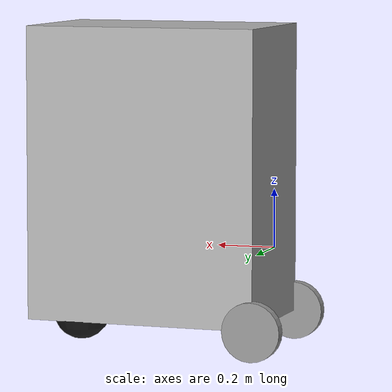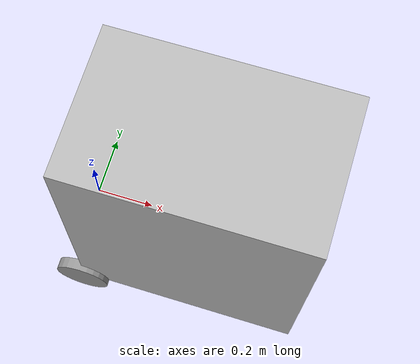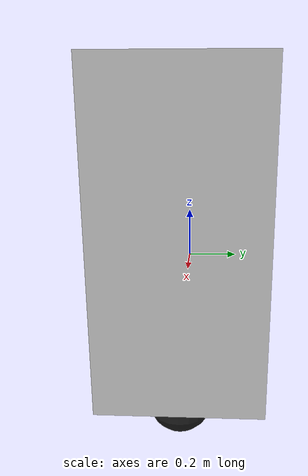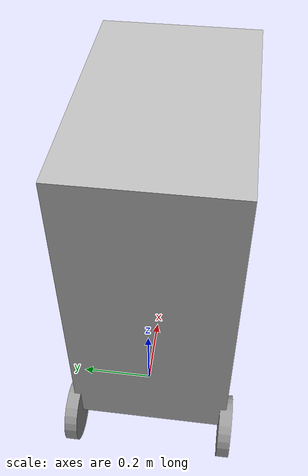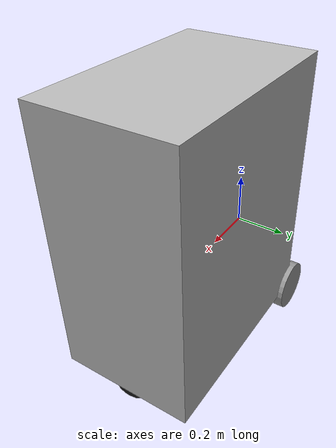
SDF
<sdf version='1.7'>
  <model name='goal_marker'>
    <link name='base_link'>
      <inertial>
        <pose>0.4 0 0.25 0 -0 0</pose> <!-- Kept the same as previous -->
        <mass>0.5</mass>
        <inertia>
          <ixx>0.0508333</ixx> <!-- Kept the same -->
          <ixy>0</ixy>
          <ixz>0.015</ixz>
          <iyy>0.0758333</iyy>
          <iyz>0</iyz>
          <izz>0.0353167</izz>
        </inertia>
      </inertial>
      <collision name='base_link_fixed_joint_lump__chassis_collision'>
        <pose>0.4 0 0.25 0 -0 0</pose> <!-- Kept the same -->
        <geometry>
          <box>
            <size>0.8 0.5 1.0</size> <!-- Dimensions unchanged -->
          </box>
        </geometry>
        <surface>
          <contact>
            <ode/>
          </contact>
          <friction>
            <ode/>
          </friction>
        </surface>
      </collision>
      <collision name='base_link_fixed_joint_lump__front_caster_collision_1'>
        <pose>0.7 0 -0.25 0 -0 0</pose> <!-- Moved caster more front (from 0.64 to 0.75) -->
        <geometry>
          <sphere>
            <radius>0.1</radius> <!-- Increased radius from 0.05 to 0.1 to match wheel radius and fill offset -->
          </sphere>
        </geometry>
        <surface>
          <contact>
            <ode>

            </ode>
          </contact>
          <friction>
            <ode>
              <mu>0</mu>             <!-- primary friction (forward/backward) -->
              <mu2>0</mu2>            <!-- secondary friction (lateral) – VERY important for caster! -->
            </ode>
          </friction>
        </surface>
      </collision>
      <visual name="base_link_fixed_joint_lump__chassis_visual_visual">
        <pose>0.4 0 0.25 0 -0 0</pose>
        <geometry>
          <box>
            <size>0.8 0.5 1.0</size>
          </box>
        </geometry>
        <material>
          <script>
            <uri>model://goal_marker/materials/scripts/chassis_pattern.material</uri>
            <name>goal_marker/ChassisPattern</name>
          </script>
        </material>
      </visual>
      <visual name='base_link_fixed_joint_lump__front_caster_visual_1'>
        <pose>0.7 0 -0.25 0 -0 0</pose> <!-- Moved caster more front (from 0.64 to 0.75) -->
        <geometry>
          <sphere>
            <radius>0.1</radius> <!-- Increased radius from 0.05 to 0.1 to match wheel radius and fill offset -->
          </sphere>
        </geometry>
        <material>
          <script>
            <name>Gazebo/Black</name>
            <uri>file://media/materials/scripts/gazebo.material</uri>
          </script>
        </material>
      </visual>
    </link>
    <joint name='left_wheel_joint' type='revolute'>
      <pose relative_to='base_link'>0 0.25 -0.25 -1.5708 0 0</pose> <!-- Adjusted y from 0.225 to 0.25 to stick to the outer side (width 0.5m, outer edge at 0.25m) -->
      <parent>base_link</parent>
      <child>left_wheel</child>
      <axis>
        <xyz>0 0 1</xyz>
        <limit>
          <lower>-1e+16</lower>
          <upper>1e+16</upper>
        </limit>
        <dynamics>
          <spring_reference>0</spring_reference>
          <spring_stiffness>0</spring_stiffness>
        </dynamics>
      </axis>
    </joint>
    <link name='left_wheel'>
      <pose relative_to='left_wheel_joint'>0 0 0 0 -0 0</pose>
      <inertial>
        <pose>0 0 0 0 -0 0</pose>
        <mass>0.1</mass>
        <inertia>
          <ixx>0.0003</ixx>
          <ixy>0</ixy>
          <ixz>0</ixz>
          <iyy>0.0003</iyy>
          <iyz>0</iyz>
          <izz>0.0005</izz>
        </inertia>
      </inertial>
      <collision name='left_wheel_collision'>
        <pose>0 0 0 0 -0 0</pose>
        <geometry>
          <cylinder>
            <length>0.04</length>
            <radius>0.1</radius> <!-- Radius unchanged as per instructions -->
          </cylinder>
        </geometry>
        <surface>
          <contact>
            <ode/>
          </contact>
          <friction>
            <ode/>
          </friction>
        </surface>
      </collision>
      <visual name='left_wheel_visual'>
        <pose>0 0 0 0 -0 0</pose>
        <geometry>
          <cylinder>
            <length>0.04</length>
            <radius>0.1</radius> <!-- Radius unchanged as per instructions -->
          </cylinder>
        </geometry>
        <material>
          <script>
            <name>Gazebo/Grey</name>
            <uri>file://media/materials/scripts/gazebo.material</uri>
          </script>
        </material>
      </visual>
    </link>
    <joint name='right_wheel_joint' type='revolute'>
      <pose relative_to='base_link'>0 -0.25 -0.25 1.5708 -0 0</pose> <!-- Adjusted y from -0.225 to -0.25 to stick to the outer side (width 0.5m, outer edge at -0.25m) -->
      <parent>base_link</parent>
      <child>right_wheel</child>
      <axis>
        <xyz>0 0 -1</xyz>
        <limit>
          <lower>-1e+16</lower>
          <upper>1e+16</upper>
        </limit>
        <dynamics>
          <spring_reference>0</spring_reference>
          <spring_stiffness>0</spring_stiffness>
        </dynamics>
      </axis>
    </joint>
    <link name='right_wheel'>
      <pose relative_to='right_wheel_joint'>0 0 0 0 -0 0</pose>
      <inertial>
        <pose>0 0 0 0 -0 0</pose>
        <mass>0.1</mass>
        <inertia>
          <ixx>0.0003</ixx>
          <ixy>0</ixy>
          <ixz>0</ixz>
          <iyy>0.0003</iyy>
          <iyz>0</iyz>
          <izz>0.0005</izz>
        </inertia>
      </inertial>
      <collision name='right_wheel_collision'>
        <pose>0 0 0 0 -0 0</pose>
        <geometry>
          <cylinder>
            <length>0.04</length>
            <radius>0.1</radius> <!-- Radius unchanged as per instructions -->
          </cylinder>
        </geometry>
        <surface>
          <contact>
            <ode/>
          </contact>
          <friction>
            <ode/>
          </friction>
        </surface>
      </collision>
      <visual name='right_wheel_visual'>
        <pose>0 0 0 0 -0 0</pose>
        <geometry>
          <cylinder>
            <length>0.04</length>
            <radius>0.1</radius> <!-- Radius unchanged as per instructions -->
          </cylinder>
        </geometry>
        <material>
          <script>
            <name>Gazebo/Grey</name>
            <uri>file://media/materials/scripts/gazebo.material</uri>
          </script>
        </material>
      </visual>
    </link>
    <static>0</static>
    <plugin name='goal_diff_drive' filename='libgazebo_ros_diff_drive.so'>
      <ros>
        <namespace>/goal_marker</namespace>
        <remapping>cmd_vel:=/goal_marker/cmd_vel</remapping>
        <remapping>odom:=/goal_marker/odom</remapping>
      </ros>
      <left_joint>left_wheel_joint</left_joint>
      <right_joint>right_wheel_joint</right_joint>
      <wheel_separation>0.5</wheel_separation> <!-- Adjusted to match outer wheel placement (0.5m width) -->
      <wheel_diameter>0.2</wheel_diameter> <!-- Unchanged for radius 0.1m -->
      <max_wheel_torque>20</max_wheel_torque>
      <max_wheel_acceleration>5.0</max_wheel_acceleration>
      <publish_odom>1</publish_odom>
      <publish_wheel_tf>0</publish_wheel_tf>
      <publish_odom_tf>0</publish_odom_tf>
      <odometry_frame>goal_odom</odometry_frame>
      <robot_base_frame>base_link</robot_base_frame>
    </plugin>
  </model>
</sdf>
